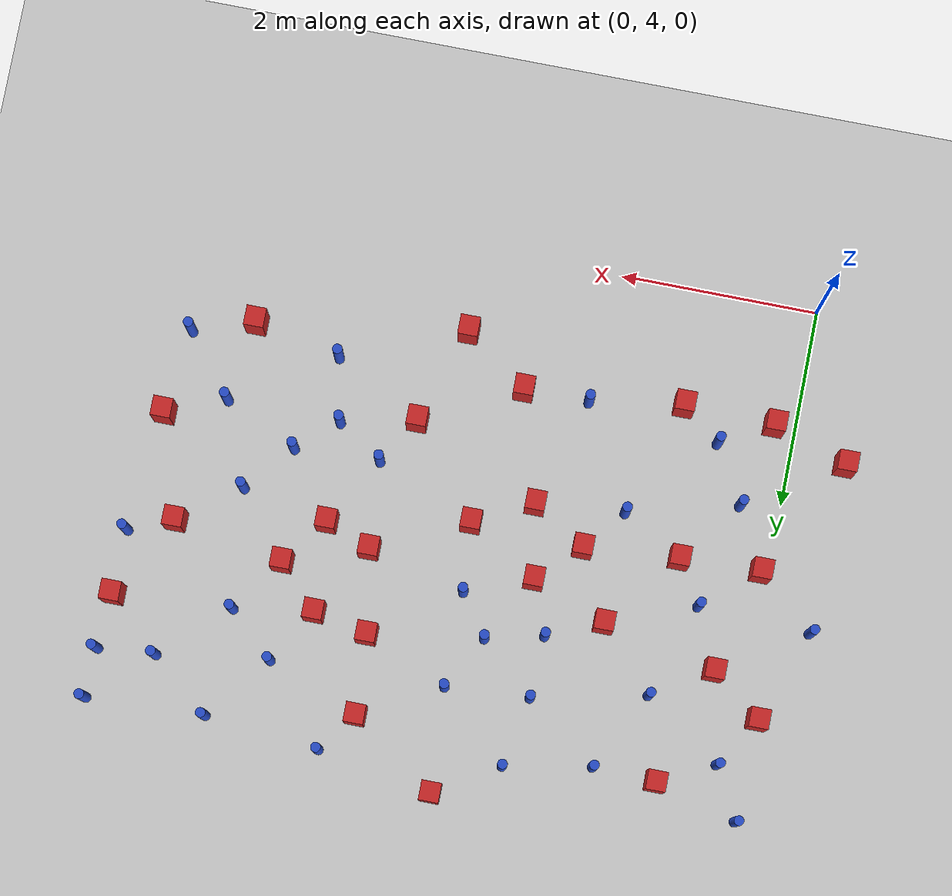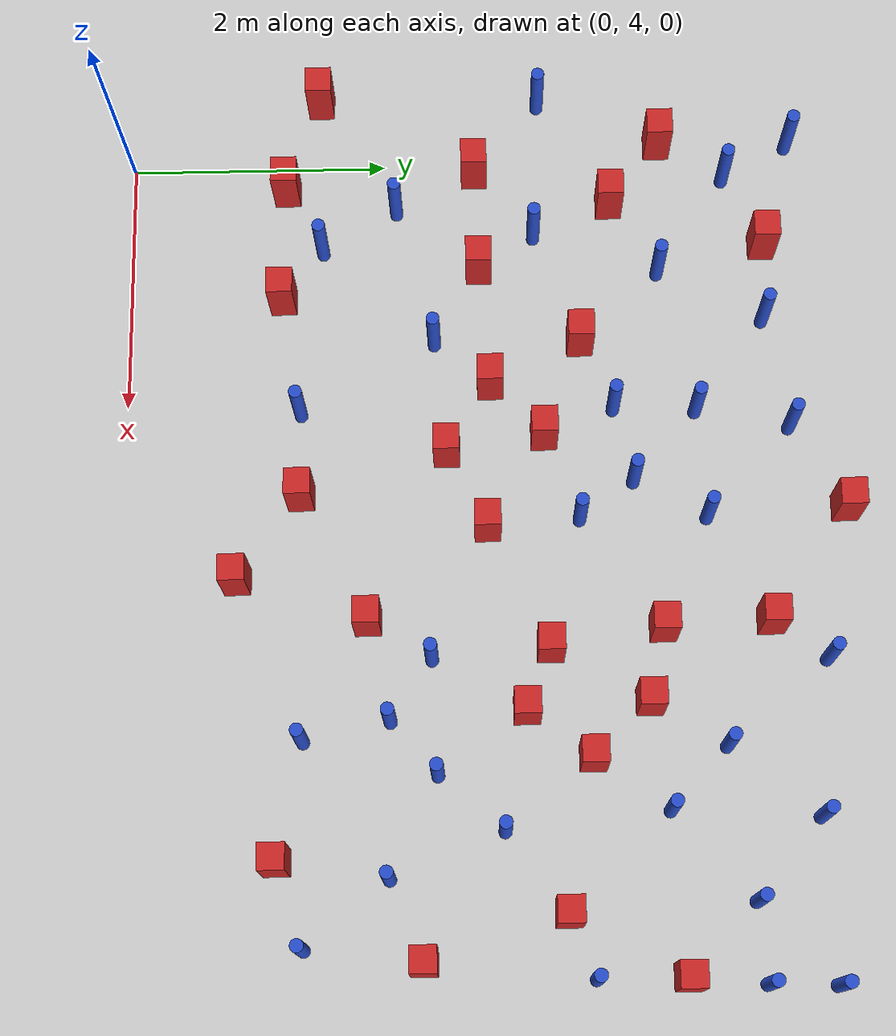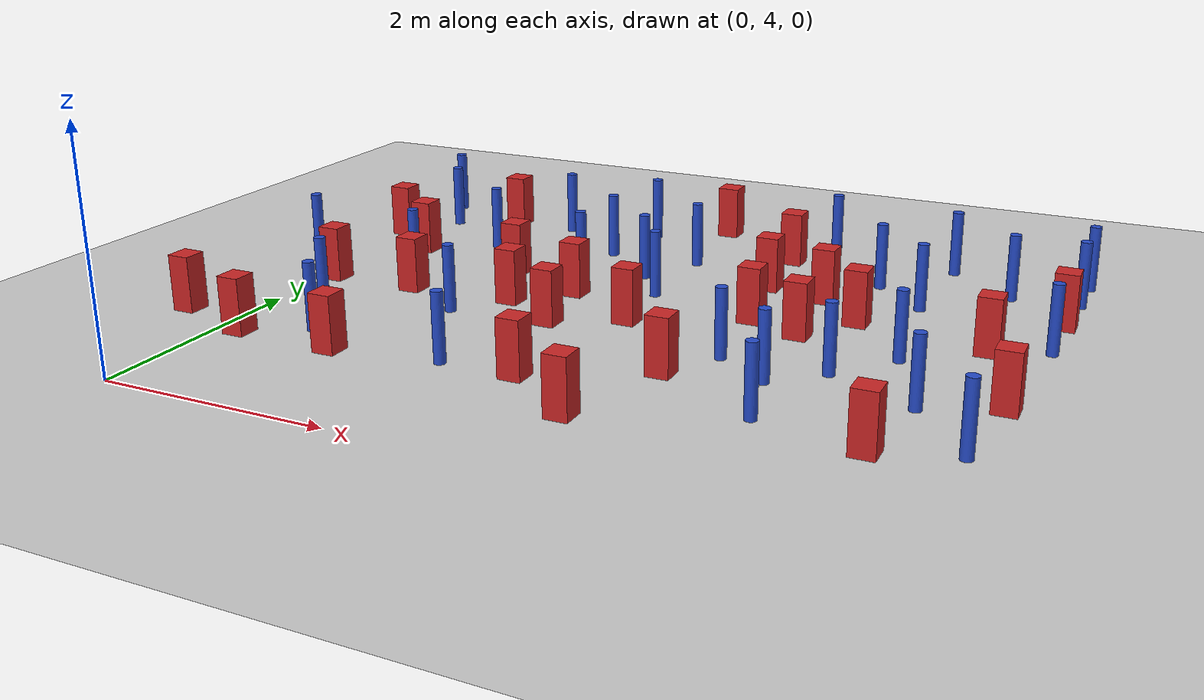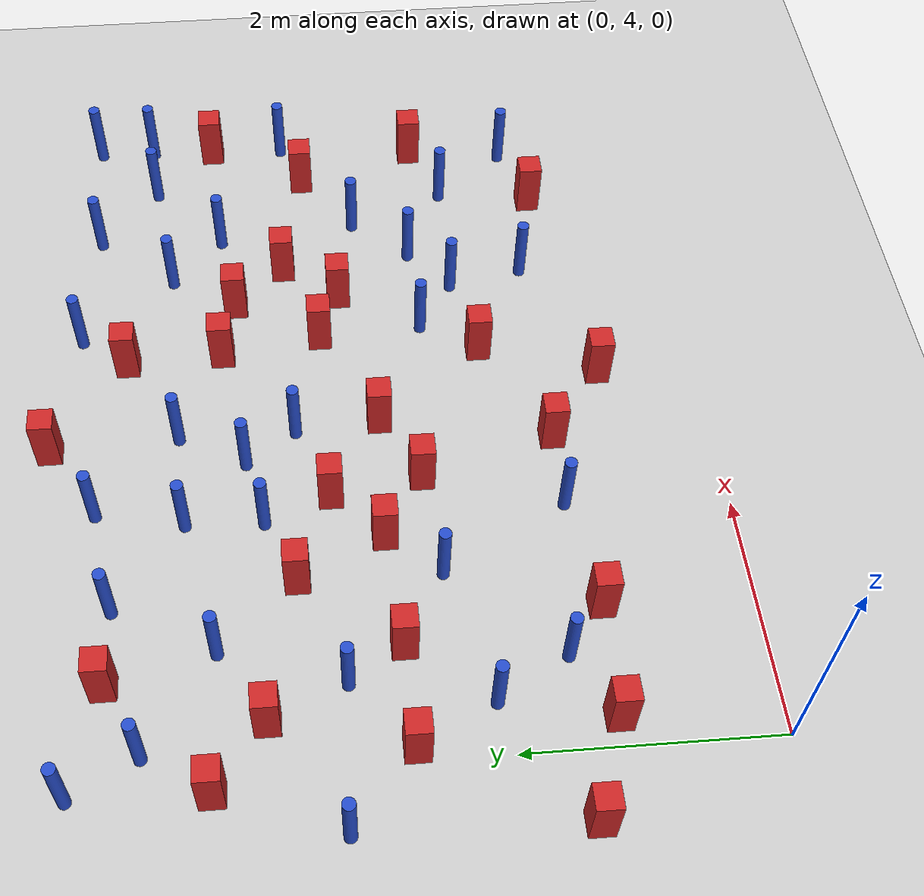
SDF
<sdf version="1.6">
 <world name="default">
  <model name="ground_plane">
   <static>1</static>
   <link name="link">
    <collision name="collision">
     <geometry><plane><normal>0 0 1</normal><size>100 100</size></plane></geometry>
     <surface><friction><ode><mu>100</mu><mu2>50</mu2></ode></friction></surface>
    </collision>
    <visual name="visual">
     <cast_shadows>0</cast_shadows>
     <geometry><plane><normal>0 0 1</normal><size>100 100</size></plane></geometry>
     <material>
      <ambient>1.0 1.0 1.0 1.0</ambient>
      <diffuse>0.8 0.8 0.8 1.0</diffuse>
      <specular>0.01 0.01 0.01 1.000000</specular>
     </material>
    </visual>
   </link>
  </model>
  <model name="pole_obstacle0">
   <static>true</static>
   <pose>6.45447654039 8.71331853259 7.38925637345e-09 -8.471706928e-08 1.24976765081e-08 -1.74513093015e-07</pose>
   <link name="link">
    <pose>0 0 0.3 0 -0 0</pose>
    <inertial>
     <mass>1</mass>
     <inertia><ixx>0.145833</ixx><ixy>0</ixy><ixz>0</ixz><iyy>0.145833</iyy><iyz>0</iyz><izz>0.125</izz></inertia>
    </inertial>
    <collision name="collision">
     <geometry><cylinder><radius>0.05</radius><length>.6</length></cylinder></geometry>
    </collision>
    <visual name="visual">
     <geometry><cylinder><radius>0.05</radius><length>.6</length></cylinder></geometry>
     <material>
      <script><name>Gazebo/Blue</name><uri>file://media/materials/scripts/gazebo.material</uri></script>
     </material>
    </visual>
   </link>
  </model>
  <model name="pole_obstacle12">
   <static>true</static>
   <pose>4.09159602282 9.2911421733 7.38925637345e-09 -8.471706928e-08 1.24976765081e-08 -1.74513093015e-07</pose>
   <link name="link">
    <pose>0 0 0.3 0 -0 0</pose>
    <inertial>
     <mass>1</mass>
     <inertia><ixx>0.145833</ixx><ixy>0</ixy><ixz>0</ixz><iyy>0.145833</iyy><iyz>0</iyz><izz>0.125</izz></inertia>
    </inertial>
    <collision name="collision">
     <geometry><cylinder><radius>0.05</radius><length>.6</length></cylinder></geometry>
    </collision>
    <visual name="visual">
     <geometry><cylinder><radius>0.05</radius><length>.6</length></cylinder></geometry>
     <material>
      <script><name>Gazebo/Blue</name><uri>file://media/materials/scripts/gazebo.material</uri></script>
     </material>
    </visual>
   </link>
  </model>
  <model name="square_post_obstacle10">
   <static>true</static>
   <pose>-0.545122452451 5.49682571022 1.91545236811e-07 -7.35059704564e-06 1.12565212e-07 2.39332434364e-05</pose>
   <link name="link">
    <pose>0 0 0.25 0 -0 0</pose>
    <inertial>
     <mass>100</mass>
     <inertia>
      <ixx>0.166667</ixx>
      <ixy>0</ixy>
      <ixz>0</ixz>
      <iyy>0.166667</iyy>
      <iyz>0</iyz>
      <izz>0.166667</izz>
     </inertia>
    </inertial>
    <collision name="collision"><geometry><box><size>.2 .2 .5</size></box></geometry></collision>
    <visual name="visual">
     <geometry><box><size>.2 .2 .5</size></box></geometry>
     <material>
      <script><name>Gazebo/Red</name><uri>file://media/materials/scripts/gazebo.material</uri></script>
     </material>
    </visual>
   </link>
  </model>
  <model name="square_post_obstacle12">
   <static>true</static>
   <pose>3.74705745859 5.85950981759 1.91545236811e-07 -7.35059704564e-06 1.12565212e-07 2.39332434364e-05</pose>
   <link name="link">
    <pose>0 0 0.25 0 -0 0</pose>
    <inertial>
     <mass>100</mass>
     <inertia>
      <ixx>0.166667</ixx>
      <ixy>0</ixy>
      <ixz>0</ixz>
      <iyy>0.166667</iyy>
      <iyz>0</iyz>
      <izz>0.166667</izz>
     </inertia>
    </inertial>
    <collision name="collision"><geometry><box><size>.2 .2 .5</size></box></geometry></collision>
    <visual name="visual">
     <geometry><box><size>.2 .2 .5</size></box></geometry>
     <material>
      <script><name>Gazebo/Red</name><uri>file://media/materials/scripts/gazebo.material</uri></script>
     </material>
    </visual>
   </link>
  </model>
  <model name="square_post_obstacle15">
   <static>true</static>
   <pose>1.88256273671 6.80930600151 1.91545236811e-07 -7.35059704564e-06 1.12565212e-07 2.39332434364e-05</pose>
   <link name="link">
    <pose>0 0 0.25 0 -0 0</pose>
    <inertial>
     <mass>100</mass>
     <inertia>
      <ixx>0.166667</ixx>
      <ixy>0</ixy>
      <ixz>0</ixz>
      <iyy>0.166667</iyy>
      <iyz>0</iyz>
      <izz>0.166667</izz>
     </inertia>
    </inertial>
    <collision name="collision"><geometry><box><size>.2 .2 .5</size></box></geometry></collision>
    <visual name="visual">
     <geometry><box><size>.2 .2 .5</size></box></geometry>
     <material>
      <script><name>Gazebo/Red</name><uri>file://media/materials/scripts/gazebo.material</uri></script>
     </material>
    </visual>
   </link>
  </model>
  <model name="square_post_obstacle16">
   <static>true</static>
   <pose>6.39530933987 8.14642815846 1.91545236811e-07 -7.35059704564e-06 1.12565212e-07 2.39332434364e-05</pose>
   <link name="link">
    <pose>0 0 0.25 0 -0 0</pose>
    <inertial>
     <mass>100</mass>
     <inertia>
      <ixx>0.166667</ixx>
      <ixy>0</ixy>
      <ixz>0</ixz>
      <iyy>0.166667</iyy>
      <iyz>0</iyz>
      <izz>0.166667</izz>
     </inertia>
    </inertial>
    <collision name="collision"><geometry><box><size>.2 .2 .5</size></box></geometry></collision>
    <visual name="visual">
     <geometry><box><size>.2 .2 .5</size></box></geometry>
     <material>
      <script><name>Gazebo/Red</name><uri>file://media/materials/scripts/gazebo.material</uri></script>
     </material>
    </visual>
   </link>
  </model>
  <model name="square_post_obstacle17">
   <static>true</static>
   <pose>4.44098144034 7.03544417988 1.91545236811e-07 -7.35059704564e-06 1.12565212e-07 2.39332434364e-05</pose>
   <link name="link">
    <pose>0 0 0.25 0 -0 0</pose>
    <inertial>
     <mass>100</mass>
     <inertia>
      <ixx>0.166667</ixx>
      <ixy>0</ixy>
      <ixz>0</ixz>
      <iyy>0.166667</iyy>
      <iyz>0</iyz>
      <izz>0.166667</izz>
     </inertia>
    </inertial>
    <collision name="collision"><geometry><box><size>.2 .2 .5</size></box></geometry></collision>
    <visual name="visual">
     <geometry><box><size>.2 .2 .5</size></box></geometry>
     <material>
      <script><name>Gazebo/Red</name><uri>file://media/materials/scripts/gazebo.material</uri></script>
     </material>
    </visual>
   </link>
  </model>
  <model name="pole_obstacle21">
   <static>true</static>
   <pose>5.26631035302 9.1702589592 7.38925637345e-09 -8.471706928e-08 1.24976765081e-08 -1.74513093015e-07</pose>
   <link name="link">
    <pose>0 0 0.3 0 -0 0</pose>
    <inertial>
     <mass>1</mass>
     <inertia><ixx>0.145833</ixx><ixy>0</ixy><ixz>0</ixz><iyy>0.145833</iyy><iyz>0</iyz><izz>0.125</izz></inertia>
    </inertial>
    <collision name="collision">
     <geometry><cylinder><radius>0.05</radius><length>.6</length></cylinder></geometry>
    </collision>
    <visual name="visual">
     <geometry><cylinder><radius>0.05</radius><length>.6</length></cylinder></geometry>
     <material>
      <script><name>Gazebo/Blue</name><uri>file://media/materials/scripts/gazebo.material</uri></script>
     </material>
    </visual>
   </link>
  </model>
  <model name="square_post_obstacle30">
   <static>true</static>
   <pose>3.83258501408 8.07017378821 1.91545236811e-07 -7.35059704564e-06 1.12565212e-07 2.39332434364e-05</pose>
   <link name="link">
    <pose>0 0 0.25 0 -0 0</pose>
    <inertial>
     <mass>100</mass>
     <inertia>
      <ixx>0.166667</ixx>
      <ixy>0</ixy>
      <ixz>0</ixz>
      <iyy>0.166667</iyy>
      <iyz>0</iyz>
      <izz>0.166667</izz>
     </inertia>
    </inertial>
    <collision name="collision"><geometry><box><size>.2 .2 .5</size></box></geometry></collision>
    <visual name="visual">
     <geometry><box><size>.2 .2 .5</size></box></geometry>
     <material>
      <script><name>Gazebo/Red</name><uri>file://media/materials/scripts/gazebo.material</uri></script>
     </material>
    </visual>
   </link>
  </model>
  <model name="square_post_obstacle37">
   <static>true</static>
   <pose>1.14866573883 5.20477821378 1.91545236811e-07 -7.35059704564e-06 1.12565212e-07 2.39332434364e-05</pose>
   <link name="link">
    <pose>0 0 0.25 0 -0 0</pose>
    <inertial>
     <mass>100</mass>
     <inertia>
      <ixx>0.166667</ixx>
      <ixy>0</ixy>
      <ixz>0</ixz>
      <iyy>0.166667</iyy>
      <iyz>0</iyz>
      <izz>0.166667</izz>
     </inertia>
    </inertial>
    <collision name="collision"><geometry><box><size>.2 .2 .5</size></box></geometry></collision>
    <visual name="visual">
     <geometry><box><size>.2 .2 .5</size></box></geometry>
     <material>
      <script><name>Gazebo/Red</name><uri>file://media/materials/scripts/gazebo.material</uri></script>
     </material>
    </visual>
   </link>
  </model>
  <model name="pole_obstacle56">
   <static>true</static>
   <pose>-0.504290990763 7.22764131729 7.38925637345e-09 -8.471706928e-08 1.24976765117e-08 -1.74513093013e-07</pose>
   <link name="link">
    <pose>0 0 0.3 0 -0 0</pose>
    <inertial>
     <mass>1</mass>
     <inertia><ixx>0.145833</ixx><ixy>0</ixy><ixz>0</ixz><iyy>0.145833</iyy><iyz>0</iyz><izz>0.125</izz></inertia>
    </inertial>
    <collision name="collision">
     <geometry><cylinder><radius>0.05</radius><length>.6</length></cylinder></geometry>
    </collision>
    <visual name="visual">
     <geometry><cylinder><radius>0.05</radius><length>.6</length></cylinder></geometry>
     <material>
      <script><name>Gazebo/Blue</name><uri>file://media/materials/scripts/gazebo.material</uri></script>
     </material>
    </visual>
   </link>
  </model>
  <model name="pole_obstacle58">
   <static>true</static>
   <pose>2.67838793935 7.8905832889 7.38925637345e-09 -8.47170692798e-08 1.24976765033e-08 -1.74513093019e-07</pose>
   <link name="link">
    <pose>0 0 0.3 0 -0 0</pose>
    <inertial>
     <mass>1</mass>
     <inertia><ixx>0.145833</ixx><ixy>0</ixy><ixz>0</ixz><iyy>0.145833</iyy><iyz>0</iyz><izz>0.125</izz></inertia>
    </inertial>
    <collision name="collision">
     <geometry><cylinder><radius>0.05</radius><length>.6</length></cylinder></geometry>
    </collision>
    <visual name="visual">
     <geometry><cylinder><radius>0.05</radius><length>.6</length></cylinder></geometry>
     <material>
      <script><name>Gazebo/Blue</name><uri>file://media/materials/scripts/gazebo.material</uri></script>
     </material>
    </visual>
   </link>
  </model>
  <model name="pole_obstacle66">
   <static>true</static>
   <pose>0.640411259399 7.17117177708 7.38925637345e-09 -8.471706928e-08 1.24976765086e-08 -1.74513093015e-07</pose>
   <link name="link">
    <pose>0 0 0.3 0 -0 0</pose>
    <inertial>
     <mass>1</mass>
     <inertia><ixx>0.145833</ixx><ixy>0</ixy><ixz>0</ixz><iyy>0.145833</iyy><iyz>0</iyz><izz>0.125</izz></inertia>
    </inertial>
    <collision name="collision">
     <geometry><cylinder><radius>0.05</radius><length>.6</length></cylinder></geometry>
    </collision>
    <visual name="visual">
     <geometry><cylinder><radius>0.05</radius><length>.6</length></cylinder></geometry>
     <material>
      <script><name>Gazebo/Blue</name><uri>file://media/materials/scripts/gazebo.material</uri></script>
     </material>
    </visual>
   </link>
  </model>
  <model name="pole_obstacle72">
   <static>true</static>
   <pose>0.173429523786 8.69050600248 7.38925637345e-09 -8.47170692796e-08 1.2497676475e-08 -1.74513093035e-07</pose>
   <link name="link">
    <pose>0 0 0.3 0 -0 0</pose>
    <inertial>
     <mass>1</mass>
     <inertia><ixx>0.145833</ixx><ixy>0</ixy><ixz>0</ixz><iyy>0.145833</iyy><iyz>0</iyz><izz>0.125</izz></inertia>
    </inertial>
    <collision name="collision">
     <geometry><cylinder><radius>0.05</radius><length>.6</length></cylinder></geometry>
    </collision>
    <visual name="visual">
     <geometry><cylinder><radius>0.05</radius><length>.6</length></cylinder></geometry>
     <material>
      <script><name>Gazebo/Blue</name><uri>file://media/materials/scripts/gazebo.material</uri></script>
     </material>
    </visual>
   </link>
  </model>
  <model name="square_post_obstacle63">
   <static>true</static>
   <pose>1.53615987998 7.51273771347 1.91545236811e-07 -7.35059704564e-06 1.12565212e-07 2.39332434364e-05</pose>
   <link name="link">
    <pose>0 0 0.25 0 -0 0</pose>
    <inertial>
     <mass>100</mass>
     <inertia>
      <ixx>0.166667</ixx>
      <ixy>0</ixy>
      <ixz>0</ixz>
      <iyy>0.166667</iyy>
      <iyz>0</iyz>
      <izz>0.166667</izz>
     </inertia>
    </inertial>
    <collision name="collision"><geometry><box><size>.2 .2 .5</size></box></geometry></collision>
    <visual name="visual">
     <geometry><box><size>.2 .2 .5</size></box></geometry>
     <material>
      <script><name>Gazebo/Red</name><uri>file://media/materials/scripts/gazebo.material</uri></script>
     </material>
    </visual>
   </link>
  </model>
  <model name="square_post_obstacle76">
   <static>true</static>
   <pose>0.0927801151584 6.71166293264 1.91545236811e-07 -7.35059704564e-06 1.12565212e-07 2.39332434364e-05</pose>
   <link name="link">
    <pose>0 0 0.25 0 -0 0</pose>
    <inertial>
     <mass>100</mass>
     <inertia>
      <ixx>0.166667</ixx>
      <ixy>0</ixy>
      <ixz>0</ixz>
      <iyy>0.166667</iyy>
      <iyz>0</iyz>
      <izz>0.166667</izz>
     </inertia>
    </inertial>
    <collision name="collision"><geometry><box><size>.2 .2 .5</size></box></geometry></collision>
    <visual name="visual">
     <geometry><box><size>.2 .2 .5</size></box></geometry>
     <material>
      <script><name>Gazebo/Red</name><uri>file://media/materials/scripts/gazebo.material</uri></script>
     </material>
    </visual>
   </link>
  </model>
  <model name="square_post_obstacle78">
   <static>true</static>
   <pose>0.373668749294 7.776331562 1.91545236811e-07 -7.35059704564e-06 1.12565212e-07 2.39332434364e-05</pose>
   <link name="link">
    <pose>0 0 0.25 0 -0 0</pose>
    <inertial>
     <mass>100</mass>
     <inertia>
      <ixx>0.166667</ixx>
      <ixy>0</ixy>
      <ixz>0</ixz>
      <iyy>0.166667</iyy>
      <iyz>0</iyz>
      <izz>0.166667</izz>
     </inertia>
    </inertial>
    <collision name="collision"><geometry><box><size>.2 .2 .5</size></box></geometry></collision>
    <visual name="visual">
     <geometry><box><size>.2 .2 .5</size></box></geometry>
     <material>
      <script><name>Gazebo/Red</name><uri>file://media/materials/scripts/gazebo.material</uri></script>
     </material>
    </visual>
   </link>
  </model>
  <model name="pole_obstacle90">
   <static>true</static>
   <pose>1.52917028168 6.38101492161 7.38925637345e-09 -8.47170692799e-08 1.24976765033e-08 -1.74513093018e-07</pose>
   <link name="link">
    <pose>0 0 0.3 0 -0 0</pose>
    <inertial>
     <mass>1</mass>
     <inertia><ixx>0.145833</ixx><ixy>0</ixy><ixz>0</ixz><iyy>0.145833</iyy><iyz>0</iyz><izz>0.125</izz></inertia>
    </inertial>
    <collision name="collision">
     <geometry><cylinder><radius>0.05</radius><length>.6</length></cylinder></geometry>
    </collision>
    <visual name="visual">
     <geometry><cylinder><radius>0.05</radius><length>.6</length></cylinder></geometry>
     <material>
      <script><name>Gazebo/Blue</name><uri>file://media/materials/scripts/gazebo.material</uri></script>
     </material>
    </visual>
   </link>
  </model>
  <model name="pole_obstacle91">
   <static>true</static>
   <pose>2.09401292833 5.34486153771 7.38925637345e-09 -8.47170692798e-08 1.24976765033e-08 -1.74513093019e-07</pose>
   <link name="link">
    <pose>0 0 0.3 0 -0 0</pose>
    <inertial>
     <mass>1</mass>
     <inertia><ixx>0.145833</ixx><ixy>0</ixy><ixz>0</ixz><iyy>0.145833</iyy><iyz>0</iyz><izz>0.125</izz></inertia>
    </inertial>
    <collision name="collision">
     <geometry><cylinder><radius>0.05</radius><length>.6</length></cylinder></geometry>
    </collision>
    <visual name="visual">
     <geometry><cylinder><radius>0.05</radius><length>.6</length></cylinder></geometry>
     <material>
      <script><name>Gazebo/Blue</name><uri>file://media/materials/scripts/gazebo.material</uri></script>
     </material>
    </visual>
   </link>
  </model>
  <model name="pole_obstacle92">
   <static>true</static>
   <pose>2.97230451236 7.47218144167 7.38925637345e-09 -8.47170692798e-08 1.24976765033e-08 -1.74513093019e-07</pose>
   <link name="link">
    <pose>0 0 0.3 0 -0 0</pose>
    <inertial>
     <mass>1</mass>
     <inertia><ixx>0.145833</ixx><ixy>0</ixy><ixz>0</ixz><iyy>0.145833</iyy><iyz>0</iyz><izz>0.125</izz></inertia>
    </inertial>
    <collision name="collision">
     <geometry><cylinder><radius>0.05</radius><length>.6</length></cylinder></geometry>
    </collision>
    <visual name="visual">
     <geometry><cylinder><radius>0.05</radius><length>.6</length></cylinder></geometry>
     <material>
      <script><name>Gazebo/Blue</name><uri>file://media/materials/scripts/gazebo.material</uri></script>
     </material>
    </visual>
   </link>
  </model>
  <model name="pole_obstacle95">
   <static>true</static>
   <pose>5.33167928406 6.85743216982 7.38925637345e-09 -8.47170692796e-08 1.24976764786e-08 -1.74513093032e-07</pose>
   <link name="link">
    <pose>0 0 0.3 0 -0 0</pose>
    <inertial>
     <mass>1</mass>
     <inertia><ixx>0.145833</ixx><ixy>0</ixy><ixz>0</ixz><iyy>0.145833</iyy><iyz>0</iyz><izz>0.125</izz></inertia>
    </inertial>
    <collision name="collision">
     <geometry><cylinder><radius>0.05</radius><length>.6</length></cylinder></geometry>
    </collision>
    <visual name="visual">
     <geometry><cylinder><radius>0.05</radius><length>.6</length></cylinder></geometry>
     <material>
      <script><name>Gazebo/Blue</name><uri>file://media/materials/scripts/gazebo.material</uri></script>
     </material>
    </visual>
   </link>
  </model>
  <model name="square_post_obstacle89">
   <static>true</static>
   <pose>0.744844221076 8.97318051248 1.91545236811e-07 -7.35059704564e-06 1.12565212e-07 2.39332434364e-05</pose>
   <link name="link">
    <pose>0 0 0.25 0 -0 0</pose>
    <inertial>
     <mass>100</mass>
     <inertia>
      <ixx>0.166667</ixx>
      <ixy>0</ixy>
      <ixz>0</ixz>
      <iyy>0.166667</iyy>
      <iyz>0</iyz>
      <izz>0.166667</izz>
     </inertia>
    </inertial>
    <collision name="collision"><geometry><box><size>.2 .2 .5</size></box></geometry></collision>
    <visual name="visual">
     <geometry><box><size>.2 .2 .5</size></box></geometry>
     <material>
      <script><name>Gazebo/Red</name><uri>file://media/materials/scripts/gazebo.material</uri></script>
     </material>
    </visual>
   </link>
  </model>
  <model name="square_post_obstacle95">
   <static>true</static>
   <pose>-0.137517161224 8.17719361656 1.91545236811e-07 -7.35059704564e-06 1.12565212e-07 2.39332434364e-05</pose>
   <link name="link">
    <pose>0 0 0.25 0 -0 0</pose>
    <inertial>
     <mass>100</mass>
     <inertia>
      <ixx>0.166667</ixx>
      <ixy>0</ixy>
      <ixz>0</ixz>
      <iyy>0.166667</iyy>
      <iyz>0</iyz>
      <izz>0.166667</izz>
     </inertia>
    </inertial>
    <collision name="collision"><geometry><box><size>.2 .2 .5</size></box></geometry></collision>
    <visual name="visual">
     <geometry><box><size>.2 .2 .5</size></box></geometry>
     <material>
      <script><name>Gazebo/Red</name><uri>file://media/materials/scripts/gazebo.material</uri></script>
     </material>
    </visual>
   </link>
  </model>
  <model name="square_post_obstacle100">
   <static>true</static>
   <pose>2.30271309138 7.2138376437 1.91545236811e-07 -7.35059704564e-06 1.12565212e-07 2.39332434364e-05</pose>
   <link name="link">
    <pose>0 0 0.25 0 -0 0</pose>
    <inertial>
     <mass>100</mass>
     <inertia>
      <ixx>0.166667</ixx>
      <ixy>0</ixy>
      <ixz>0</ixz>
      <iyy>0.166667</iyy>
      <iyz>0</iyz>
      <izz>0.166667</izz>
     </inertia>
    </inertial>
    <collision name="collision"><geometry><box><size>.2 .2 .5</size></box></geometry></collision>
    <visual name="visual">
     <geometry><box><size>.2 .2 .5</size></box></geometry>
     <material>
      <script><name>Gazebo/Red</name><uri>file://media/materials/scripts/gazebo.material</uri></script>
     </material>
    </visual>
   </link>
  </model>
  <model name="pole_obstacle106">
   <static>true</static>
   <pose>0.964677962123 8.13944833201 7.38925637345e-09 -8.47170692796e-08 1.24976764734e-08 -1.74513093035e-07</pose>
   <link name="link">
    <pose>0 0 0.3 0 -0 0</pose>
    <inertial>
     <mass>1</mass>
     <inertia><ixx>0.145833</ixx><ixy>0</ixy><ixz>0</ixz><iyy>0.145833</iyy><iyz>0</iyz><izz>0.125</izz></inertia>
    </inertial>
    <collision name="collision">
     <geometry><cylinder><radius>0.05</radius><length>.6</length></cylinder></geometry>
    </collision>
    <visual name="visual">
     <geometry><cylinder><radius>0.05</radius><length>.6</length></cylinder></geometry>
     <material>
      <script><name>Gazebo/Blue</name><uri>file://media/materials/scripts/gazebo.material</uri></script>
     </material>
    </visual>
   </link>
  </model>
  <model name="square_post_obstacle103">
   <static>true</static>
   <pose>5.93173742704 7.30629015142 1.91545236811e-07 -7.35059704564e-06 1.12565212e-07 2.39332434364e-05</pose>
   <link name="link">
    <pose>0 0 0.25 0 -0 0</pose>
    <inertial>
     <mass>100</mass>
     <inertia>
      <ixx>0.166667</ixx>
      <ixy>0</ixy>
      <ixz>0</ixz>
      <iyy>0.166667</iyy>
      <iyz>0</iyz>
      <izz>0.166667</izz>
     </inertia>
    </inertial>
    <collision name="collision"><geometry><box><size>.2 .2 .5</size></box></geometry></collision>
    <visual name="visual">
     <geometry><box><size>.2 .2 .5</size></box></geometry>
     <material>
      <script><name>Gazebo/Red</name><uri>file://media/materials/scripts/gazebo.material</uri></script>
     </material>
    </visual>
   </link>
  </model>
  <model name="square_post_obstacle110">
   <static>true</static>
   <pose>2.75830531948 5.35155786229 1.91545236811e-07 -7.35059704564e-06 1.12565212e-07 2.39332434364e-05</pose>
   <link name="link">
    <pose>0 0 0.25 0 -0 0</pose>
    <inertial>
     <mass>100</mass>
     <inertia>
      <ixx>0.166667</ixx>
      <ixy>0</ixy>
      <ixz>0</ixz>
      <iyy>0.166667</iyy>
      <iyz>0</iyz>
      <izz>0.166667</izz>
     </inertia>
    </inertial>
    <collision name="collision"><geometry><box><size>.2 .2 .5</size></box></geometry></collision>
    <visual name="visual">
     <geometry><box><size>.2 .2 .5</size></box></geometry>
     <material>
      <script><name>Gazebo/Red</name><uri>file://media/materials/scripts/gazebo.material</uri></script>
     </material>
    </visual>
   </link>
  </model>
  <model name="pole_obstacle113">
   <static>true</static>
   <pose>1.379358159 8.94537067735 7.38925637345e-09 -8.47170692798e-08 1.24976764881e-08 -1.74513093027e-07</pose>
   <link name="link">
    <pose>0 0 0.3 0 -0 0</pose>
    <inertial>
     <mass>1</mass>
     <inertia><ixx>0.145833</ixx><ixy>0</ixy><ixz>0</ixz><iyy>0.145833</iyy><iyz>0</iyz><izz>0.125</izz></inertia>
    </inertial>
    <collision name="collision">
     <geometry><cylinder><radius>0.05</radius><length>.6</length></cylinder></geometry>
    </collision>
    <visual name="visual">
     <geometry><cylinder><radius>0.05</radius><length>.6</length></cylinder></geometry>
     <material>
      <script><name>Gazebo/Blue</name><uri>file://media/materials/scripts/gazebo.material</uri></script>
     </material>
    </visual>
   </link>
  </model>
  <model name="pole_obstacle115">
   <static>true</static>
   <pose>4.73510388301 8.50815964453 7.38925637345e-09 -8.471706928e-08 1.24976765081e-08 -1.74513093015e-07</pose>
   <link name="link">
    <pose>0 0 0.3 0 -0 0</pose>
    <inertial>
     <mass>1</mass>
     <inertia><ixx>0.145833</ixx><ixy>0</ixy><ixz>0</ixz><iyy>0.145833</iyy><iyz>0</iyz><izz>0.125</izz></inertia>
    </inertial>
    <collision name="collision">
     <geometry><cylinder><radius>0.05</radius><length>.6</length></cylinder></geometry>
    </collision>
    <visual name="visual">
     <geometry><cylinder><radius>0.05</radius><length>.6</length></cylinder></geometry>
     <material>
      <script><name>Gazebo/Blue</name><uri>file://media/materials/scripts/gazebo.material</uri></script>
     </material>
    </visual>
   </link>
  </model>
  <model name="square_post_obstacle112">
   <static>true</static>
   <pose>6.25944131388 6.25667901129 1.91545236811e-07 -7.35059704564e-06 1.12565212e-07 2.39332434364e-05</pose>
   <link name="link">
    <pose>0 0 0.25 0 -0 0</pose>
    <inertial>
     <mass>100</mass>
     <inertia>
      <ixx>0.166667</ixx>
      <ixy>0</ixy>
      <ixz>0</ixz>
      <iyy>0.166667</iyy>
      <iyz>0</iyz>
      <izz>0.166667</izz>
     </inertia>
    </inertial>
    <collision name="collision"><geometry><box><size>.2 .2 .5</size></box></geometry></collision>
    <visual name="visual">
     <geometry><box><size>.2 .2 .5</size></box></geometry>
     <material>
      <script><name>Gazebo/Red</name><uri>file://media/materials/scripts/gazebo.material</uri></script>
     </material>
    </visual>
   </link>
  </model>
  <model name="pole_obstacle119">
   <static>true</static>
   <pose>4.04341013082 6.33520967192 7.38925637345e-09 -8.47170692796e-08 1.24976764793e-08 -1.74513093032e-07</pose>
   <link name="link">
    <pose>0 0 0.3 0 -0 0</pose>
    <inertial>
     <mass>1</mass>
     <inertia><ixx>0.145833</ixx><ixy>0</ixy><ixz>0</ixz><iyy>0.145833</iyy><iyz>0</iyz><izz>0.125</izz></inertia>
    </inertial>
    <collision name="collision">
     <geometry><cylinder><radius>0.05</radius><length>.6</length></cylinder></geometry>
    </collision>
    <visual name="visual">
     <geometry><cylinder><radius>0.05</radius><length>.6</length></cylinder></geometry>
     <material>
      <script><name>Gazebo/Blue</name><uri>file://media/materials/scripts/gazebo.material</uri></script>
     </material>
    </visual>
   </link>
  </model>
  <model name="pole_obstacle121">
   <static>true</static>
   <pose>5.66531852088 6.01052796393 7.38925637345e-09 -8.47170692796e-08 1.24976764786e-08 -1.74513093032e-07</pose>
   <link name="link">
    <pose>0 0 0.3 0 -0 0</pose>
    <inertial>
     <mass>1</mass>
     <inertia><ixx>0.145833</ixx><ixy>0</ixy><ixz>0</ixz><iyy>0.145833</iyy><iyz>0</iyz><izz>0.125</izz></inertia>
    </inertial>
    <collision name="collision">
     <geometry><cylinder><radius>0.05</radius><length>.6</length></cylinder></geometry>
    </collision>
    <visual name="visual">
     <geometry><cylinder><radius>0.05</radius><length>.6</length></cylinder></geometry>
     <material>
      <script><name>Gazebo/Blue</name><uri>file://media/materials/scripts/gazebo.material</uri></script>
     </material>
    </visual>
   </link>
  </model>
  <model name="pole_obstacle126">
   <static>true</static>
   <pose>0.411483870109 6.09299620234 7.38925637345e-09 -8.471706928e-08 1.24976765079e-08 -1.74513093015e-07</pose>
   <link name="link">
    <pose>0 0 0.3 0 -0 0</pose>
    <inertial>
     <mass>1</mass>
     <inertia><ixx>0.145833</ixx><ixy>0</ixy><ixz>0</ixz><iyy>0.145833</iyy><iyz>0</iyz><izz>0.125</izz></inertia>
    </inertial>
    <collision name="collision">
     <geometry><cylinder><radius>0.05</radius><length>.6</length></cylinder></geometry>
    </collision>
    <visual name="visual">
     <geometry><cylinder><radius>0.05</radius><length>.6</length></cylinder></geometry>
     <material>
      <script><name>Gazebo/Blue</name><uri>file://media/materials/scripts/gazebo.material</uri></script>
     </material>
    </visual>
   </link>
  </model>
  <model name="square_post_obstacle124">
   <static>true</static>
   <pose>3.02655755236 6.77022255775 1.91545236811e-07 -7.35059704564e-06 1.12565212e-07 2.39332434364e-05</pose>
   <link name="link">
    <pose>0 0 0.25 0 -0 0</pose>
    <inertial>
     <mass>100</mass>
     <inertia>
      <ixx>0.166667</ixx>
      <ixy>0</ixy>
      <ixz>0</ixz>
      <iyy>0.166667</iyy>
      <iyz>0</iyz>
      <izz>0.166667</izz>
     </inertia>
    </inertial>
    <collision name="collision"><geometry><box><size>.2 .2 .5</size></box></geometry></collision>
    <visual name="visual">
     <geometry><box><size>.2 .2 .5</size></box></geometry>
     <material>
      <script><name>Gazebo/Red</name><uri>file://media/materials/scripts/gazebo.material</uri></script>
     </material>
    </visual>
   </link>
  </model>
  <model name="square_post_obstacle127">
   <static>true</static>
   <pose>3.78755181517 8.88391971758 1.91545236811e-07 -7.35059704564e-06 1.12565212e-07 2.39332434364e-05</pose>
   <link name="link">
    <pose>0 0 0.25 0 -0 0</pose>
    <inertial>
     <mass>100</mass>
     <inertia>
      <ixx>0.166667</ixx>
      <ixy>0</ixy>
      <ixz>0</ixz>
      <iyy>0.166667</iyy>
      <iyz>0</iyz>
      <izz>0.166667</izz>
     </inertia>
    </inertial>
    <collision name="collision"><geometry><box><size>.2 .2 .5</size></box></geometry></collision>
    <visual name="visual">
     <geometry><box><size>.2 .2 .5</size></box></geometry>
     <material>
      <script><name>Gazebo/Red</name><uri>file://media/materials/scripts/gazebo.material</uri></script>
     </material>
    </visual>
   </link>
  </model>
  <model name="square_post_obstacle133">
   <static>true</static>
   <pose>3.41253947796 4.87228864916 1.91545236811e-07 -7.35059704564e-06 1.12565212e-07 2.39332434364e-05</pose>
   <link name="link">
    <pose>0 0 0.25 0 -0 0</pose>
    <inertial>
     <mass>100</mass>
     <inertia>
      <ixx>0.166667</ixx>
      <ixy>0</ixy>
      <ixz>0</ixz>
      <iyy>0.166667</iyy>
      <iyz>0</iyz>
      <izz>0.166667</izz>
     </inertia>
    </inertial>
    <collision name="collision"><geometry><box><size>.2 .2 .5</size></box></geometry></collision>
    <visual name="visual">
     <geometry><box><size>.2 .2 .5</size></box></geometry>
     <material>
      <script><name>Gazebo/Red</name><uri>file://media/materials/scripts/gazebo.material</uri></script>
     </material>
    </visual>
   </link>
  </model>
  <model name="square_post_obstacle138">
   <static>true</static>
   <pose>0.221521625188 5.22940378726 1.91545236811e-07 -7.35059704564e-06 1.12565212e-07 2.39332434364e-05</pose>
   <link name="link">
    <pose>0 0 0.25 0 -0 0</pose>
    <inertial>
     <mass>100</mass>
     <inertia>
      <ixx>0.166667</ixx>
      <ixy>0</ixy>
      <ixz>0</ixz>
      <iyy>0.166667</iyy>
      <iyz>0</iyz>
      <izz>0.166667</izz>
     </inertia>
    </inertial>
    <collision name="collision"><geometry><box><size>.2 .2 .5</size></box></geometry></collision>
    <visual name="visual">
     <geometry><box><size>.2 .2 .5</size></box></geometry>
     <material>
      <script><name>Gazebo/Red</name><uri>file://media/materials/scripts/gazebo.material</uri></script>
     </material>
    </visual>
   </link>
  </model>
  <model name="square_post_obstacle139">
   <static>true</static>
   <pose>4.39076563859 7.94858100316 1.91545236811e-07 -7.35059704564e-06 1.12565212e-07 2.39332434364e-05</pose>
   <link name="link">
    <pose>0 0 0.25 0 -0 0</pose>
    <inertial>
     <mass>100</mass>
     <inertia>
      <ixx>0.166667</ixx>
      <ixy>0</ixy>
      <ixz>0</ixz>
      <iyy>0.166667</iyy>
      <iyz>0</iyz>
      <izz>0.166667</izz>
     </inertia>
    </inertial>
    <collision name="collision"><geometry><box><size>.2 .2 .5</size></box></geometry></collision>
    <visual name="visual">
     <geometry><box><size>.2 .2 .5</size></box></geometry>
     <material>
      <script><name>Gazebo/Red</name><uri>file://media/materials/scripts/gazebo.material</uri></script>
     </material>
    </visual>
   </link>
  </model>
  <model name="pole_obstacle147">
   <static>true</static>
   <pose>2.12012925198 8.38776427869 7.38925637345e-09 -8.47170692793e-08 1.24976764408e-08 -1.74513093041e-07</pose>
   <link name="link">
    <pose>0 0 0.3 0 -0 0</pose>
    <inertial>
     <mass>1</mass>
     <inertia><ixx>0.145833</ixx><ixy>0</ixy><ixz>0</ixz><iyy>0.145833</iyy><iyz>0</iyz><izz>0.125</izz></inertia>
    </inertial>
    <collision name="collision">
     <geometry><cylinder><radius>0.05</radius><length>.6</length></cylinder></geometry>
    </collision>
    <visual name="visual">
     <geometry><cylinder><radius>0.05</radius><length>.6</length></cylinder></geometry>
     <material>
      <script><name>Gazebo/Blue</name><uri>file://media/materials/scripts/gazebo.material</uri></script>
     </material>
    </visual>
   </link>
  </model>
  <model name="pole_obstacle160">
   <static>true</static>
   <pose>4.91325508364 6.37074374586 7.38925637345e-09 -8.47170692796e-08 1.24976764786e-08 -1.74513093032e-07</pose>
   <link name="link">
    <pose>0 0 0.3 0 -0 0</pose>
    <inertial>
     <mass>1</mass>
     <inertia><ixx>0.145833</ixx><ixy>0</ixy><ixz>0</ixz><iyy>0.145833</iyy><iyz>0</iyz><izz>0.125</izz></inertia>
    </inertial>
    <collision name="collision">
     <geometry><cylinder><radius>0.05</radius><length>.6</length></cylinder></geometry>
    </collision>
    <visual name="visual">
     <geometry><cylinder><radius>0.05</radius><length>.6</length></cylinder></geometry>
     <material>
      <script><name>Gazebo/Blue</name><uri>file://media/materials/scripts/gazebo.material</uri></script>
     </material>
    </visual>
   </link>
  </model>
  <model name="square_post_obstacle158">
   <static>true</static>
   <pose>2.42943344809 6.46743483589 1.91545236811e-07 -7.35059704564e-06 1.12565212e-07 2.39332434364e-05</pose>
   <link name="link">
    <pose>0 0 0.25 0 -0 0</pose>
    <inertial>
     <mass>100</mass>
     <inertia>
      <ixx>0.166667</ixx>
      <ixy>0</ixy>
      <ixz>0</ixz>
      <iyy>0.166667</iyy>
      <iyz>0</iyz>
      <izz>0.166667</izz>
     </inertia>
    </inertial>
    <collision name="collision"><geometry><box><size>.2 .2 .5</size></box></geometry></collision>
    <visual name="visual">
     <geometry><box><size>.2 .2 .5</size></box></geometry>
     <material>
      <script><name>Gazebo/Red</name><uri>file://media/materials/scripts/gazebo.material</uri></script>
     </material>
    </visual>
   </link>
  </model>
  <model name="pole_obstacle170">
   <static>true</static>
   <pose>4.5089978193 6.02216792372 7.38925637345e-09 -8.47170692796e-08 1.24976764786e-08 -1.74513093032e-07</pose>
   <link name="link">
    <pose>0 0 0.3 0 -0 0</pose>
    <inertial>
     <mass>1</mass>
     <inertia><ixx>0.145833</ixx><ixy>0</ixy><ixz>0</ixz><iyy>0.145833</iyy><iyz>0</iyz><izz>0.125</izz></inertia>
    </inertial>
    <collision name="collision">
     <geometry><cylinder><radius>0.05</radius><length>.6</length></cylinder></geometry>
    </collision>
    <visual name="visual">
     <geometry><cylinder><radius>0.05</radius><length>.6</length></cylinder></geometry>
     <material>
      <script><name>Gazebo/Blue</name><uri>file://media/materials/scripts/gazebo.material</uri></script>
     </material>
    </visual>
   </link>
  </model>
  <model name="pole_obstacle172">
   <static>true</static>
   <pose>4.64876427292 5.37289668389 7.38925637345e-09 -8.47170692796e-08 1.24976764786e-08 -1.74513093032e-07</pose>
   <link name="link">
    <pose>0 0 0.3 0 -0 0</pose>
    <inertial>
     <mass>1</mass>
     <inertia><ixx>0.145833</ixx><ixy>0</ixy><ixz>0</ixz><iyy>0.145833</iyy><iyz>0</iyz><izz>0.125</izz></inertia>
    </inertial>
    <collision name="collision">
     <geometry><cylinder><radius>0.05</radius><length>.6</length></cylinder></geometry>
    </collision>
    <visual name="visual">
     <geometry><cylinder><radius>0.05</radius><length>.6</length></cylinder></geometry>
     <material>
      <script><name>Gazebo/Blue</name><uri>file://media/materials/scripts/gazebo.material</uri></script>
     </material>
    </visual>
   </link>
  </model>
  <model name="pole_obstacle176">
   <static>true</static>
   <pose>5.20187309964 8.07165407701 7.38925637345e-09 -8.471706928e-08 1.24976765081e-08 -1.74513093015e-07</pose>
   <link name="link">
    <pose>0 0 0.3 0 -0 0</pose>
    <inertial>
     <mass>1</mass>
     <inertia><ixx>0.145833</ixx><ixy>0</ixy><ixz>0</ixz><iyy>0.145833</iyy><iyz>0</iyz><izz>0.125</izz></inertia>
    </inertial>
    <collision name="collision">
     <geometry><cylinder><radius>0.05</radius><length>.6</length></cylinder></geometry>
    </collision>
    <visual name="visual">
     <geometry><cylinder><radius>0.05</radius><length>.6</length></cylinder></geometry>
     <material>
      <script><name>Gazebo/Blue</name><uri>file://media/materials/scripts/gazebo.material</uri></script>
     </material>
    </visual>
   </link>
  </model>
  <model name="square_post_obstacle179">
   <static>true</static>
   <pose>5.52763052811 5.18787239867 1.91545236811e-07 -7.35059704564e-06 1.12565212e-07 2.39332434364e-05</pose>
   <link name="link">
    <pose>0 0 0.25 0 -0 0</pose>
    <inertial>
     <mass>100</mass>
     <inertia>
      <ixx>0.166667</ixx>
      <ixy>0</ixy>
      <ixz>0</ixz>
      <iyy>0.166667</iyy>
      <iyz>0</iyz>
      <izz>0.166667</izz>
     </inertia>
    </inertial>
    <collision name="collision"><geometry><box><size>.2 .2 .5</size></box></geometry></collision>
    <visual name="visual">
     <geometry><box><size>.2 .2 .5</size></box></geometry>
     <material>
      <script><name>Gazebo/Red</name><uri>file://media/materials/scripts/gazebo.material</uri></script>
     </material>
    </visual>
   </link>
  </model>
  <model name="pole_obstacle185">
   <static>true</static>
   <pose>-0.105836003474 9.21250348855 7.38925637345e-09 -8.47170692796e-08 1.24976764728e-08 -1.74513093036e-07</pose>
   <link name="link">
    <pose>0 0 0.3 0 -0 0</pose>
    <inertial>
     <mass>1</mass>
     <inertia><ixx>0.145833</ixx><ixy>0</ixy><ixz>0</ixz><iyy>0.145833</iyy><iyz>0</iyz><izz>0.125</izz></inertia>
    </inertial>
    <collision name="collision">
     <geometry><cylinder><radius>0.05</radius><length>.6</length></cylinder></geometry>
    </collision>
    <visual name="visual">
     <geometry><cylinder><radius>0.05</radius><length>.6</length></cylinder></geometry>
     <material>
      <script><name>Gazebo/Blue</name><uri>file://media/materials/scripts/gazebo.material</uri></script>
     </material>
    </visual>
   </link>
  </model>
  <model name="square_post_obstacle185">
   <static>true</static>
   <pose>4.80184566235 7.51460642698 1.91545236811e-07 -7.35059704564e-06 1.12565212e-07 2.39332434364e-05</pose>
   <link name="link">
    <pose>0 0 0.25 0 -0 0</pose>
    <inertial>
     <mass>100</mass>
     <inertia>
      <ixx>0.166667</ixx>
      <ixy>0</ixy>
      <ixz>0</ixz>
      <iyy>0.166667</iyy>
      <iyz>0</iyz>
      <izz>0.166667</izz>
     </inertia>
    </inertial>
    <collision name="collision"><geometry><box><size>.2 .2 .5</size></box></geometry></collision>
    <visual name="visual">
     <geometry><box><size>.2 .2 .5</size></box></geometry>
     <material>
      <script><name>Gazebo/Red</name><uri>file://media/materials/scripts/gazebo.material</uri></script>
     </material>
    </visual>
   </link>
  </model>
  <model name="square_post_obstacle195">
   <static>true</static>
   <pose>2.91243708928 9.49951885985 1.91545236811e-07 -7.35059704564e-06 1.12565212e-07 2.39332434364e-05</pose>
   <link name="link">
    <pose>0 0 0.25 0 -0 0</pose>
    <inertial>
     <mass>100</mass>
     <inertia>
      <ixx>0.166667</ixx>
      <ixy>0</ixy>
      <ixz>0</ixz>
      <iyy>0.166667</iyy>
      <iyz>0</iyz>
      <izz>0.166667</izz>
     </inertia>
    </inertial>
    <collision name="collision"><geometry><box><size>.2 .2 .5</size></box></geometry></collision>
    <visual name="visual">
     <geometry><box><size>.2 .2 .5</size></box></geometry>
     <material>
      <script><name>Gazebo/Red</name><uri>file://media/materials/scripts/gazebo.material</uri></script>
     </material>
    </visual>
   </link>
  </model>
  <model name="pole_obstacle190">
   <static>true</static>
   <pose>6.15837287259 5.38563481907 7.38925637345e-09 -8.47170692796e-08 1.24976764786e-08 -1.74513093032e-07</pose>
   <link name="link">
    <pose>0 0 0.3 0 -0 0</pose>
    <inertial>
     <mass>1</mass>
     <inertia><ixx>0.145833</ixx><ixy>0</ixy><ixz>0</ixz><iyy>0.145833</iyy><iyz>0</iyz><izz>0.125</izz></inertia>
    </inertial>
    <collision name="collision">
     <geometry><cylinder><radius>0.05</radius><length>.6</length></cylinder></geometry>
    </collision>
    <visual name="visual">
     <geometry><cylinder><radius>0.05</radius><length>.6</length></cylinder></geometry>
     <material>
      <script><name>Gazebo/Blue</name><uri>file://media/materials/scripts/gazebo.material</uri></script>
     </material>
    </visual>
   </link>
  </model>
  <model name="pole_obstacle199">
   <static>true</static>
   <pose>2.09071819181 7.75393918557 7.38925637345e-09 -8.47170692798e-08 1.24976765033e-08 -1.74513093019e-07</pose>
   <link name="link">
    <pose>0 0 0.3 0 -0 0</pose>
    <inertial>
     <mass>1</mass>
     <inertia><ixx>0.145833</ixx><ixy>0</ixy><ixz>0</ixz><iyy>0.145833</iyy><iyz>0</iyz><izz>0.125</izz></inertia>
    </inertial>
    <collision name="collision">
     <geometry><cylinder><radius>0.05</radius><length>.6</length></cylinder></geometry>
    </collision>
    <visual name="visual">
     <geometry><cylinder><radius>0.05</radius><length>.6</length></cylinder></geometry>
     <material>
      <script><name>Gazebo/Blue</name><uri>file://media/materials/scripts/gazebo.material</uri></script>
     </material>
    </visual>
   </link>
  </model>
  <model name="pole_obstacle201">
   <static>true</static>
   <pose>0.747193418488 5.51342752954 7.38925637345e-09 -8.471706928e-08 1.24976765086e-08 -1.74513093015e-07</pose>
   <link name="link">
    <pose>0 0 0.3 0 -0 0</pose>
    <inertial>
     <mass>1</mass>
     <inertia><ixx>0.145833</ixx><ixy>0</ixy><ixz>0</ixz><iyy>0.145833</iyy><iyz>0</iyz><izz>0.125</izz></inertia>
    </inertial>
    <collision name="collision">
     <geometry><cylinder><radius>0.05</radius><length>.6</length></cylinder></geometry>
    </collision>
    <visual name="visual">
     <geometry><cylinder><radius>0.05</radius><length>.6</length></cylinder></geometry>
     <material>
      <script><name>Gazebo/Blue</name><uri>file://media/materials/scripts/gazebo.material</uri></script>
     </material>
    </visual>
   </link>
  </model>
  <model name="pole_obstacle203">
   <static>true</static>
   <pose>2.97513089922 8.44098875833 7.38925637345e-09 -8.47170692793e-08 1.24976764408e-08 -1.74513093041e-07</pose>
   <link name="link">
    <pose>0 0 0.3 0 -0 0</pose>
    <inertial>
     <mass>1</mass>
     <inertia><ixx>0.145833</ixx><ixy>0</ixy><ixz>0</ixz><iyy>0.145833</iyy><iyz>0</iyz><izz>0.125</izz></inertia>
    </inertial>
    <collision name="collision">
     <geometry><cylinder><radius>0.05</radius><length>.6</length></cylinder></geometry>
    </collision>
    <visual name="visual">
     <geometry><cylinder><radius>0.05</radius><length>.6</length></cylinder></geometry>
     <material>
      <script><name>Gazebo/Blue</name><uri>file://media/materials/scripts/gazebo.material</uri></script>
     </material>
    </visual>
   </link>
  </model>
  <model name="pole_obstacle206">
   <static>true</static>
   <pose>6.39832136963 7.49153986949 7.38925637345e-09 -8.47170692796e-08 1.24976764786e-08 -1.74513093032e-07</pose>
   <link name="link">
    <pose>0 0 0.3 0 -0 0</pose>
    <inertial>
     <mass>1</mass>
     <inertia><ixx>0.145833</ixx><ixy>0</ixy><ixz>0</ixz><iyy>0.145833</iyy><iyz>0</iyz><izz>0.125</izz></inertia>
    </inertial>
    <collision name="collision">
     <geometry><cylinder><radius>0.05</radius><length>.6</length></cylinder></geometry>
    </collision>
    <visual name="visual">
     <geometry><cylinder><radius>0.05</radius><length>.6</length></cylinder></geometry>
     <material>
      <script><name>Gazebo/Blue</name><uri>file://media/materials/scripts/gazebo.material</uri></script>
     </material>
    </visual>
   </link>
  </model>
  <model name="pole_obstacle212">
   <static>true</static>
   <pose>2.26496739109 9.10673757566 7.38925637345e-09 -8.47170692793e-08 1.24976764408e-08 -1.74513093041e-07</pose>
   <link name="link">
    <pose>0 0 0.3 0 -0 0</pose>
    <inertial>
     <mass>1</mass>
     <inertia><ixx>0.145833</ixx><ixy>0</ixy><ixz>0</ixz><iyy>0.145833</iyy><iyz>0</iyz><izz>0.125</izz></inertia>
    </inertial>
    <collision name="collision">
     <geometry><cylinder><radius>0.05</radius><length>.6</length></cylinder></geometry>
    </collision>
    <visual name="visual">
     <geometry><cylinder><radius>0.05</radius><length>.6</length></cylinder></geometry>
     <material>
      <script><name>Gazebo/Blue</name><uri>file://media/materials/scripts/gazebo.material</uri></script>
     </material>
    </visual>
   </link>
  </model>
  <model name="pole_obstacle213">
   <static>true</static>
   <pose>5.8690622808 8.66718019561 7.38925637345e-09 -8.471706928e-08 1.24976765081e-08 -1.74513093015e-07</pose>
   <link name="link">
    <pose>0 0 0.3 0 -0 0</pose>
    <inertial>
     <mass>1</mass>
     <inertia><ixx>0.145833</ixx><ixy>0</ixy><ixz>0</ixz><iyy>0.145833</iyy><iyz>0</iyz><izz>0.125</izz></inertia>
    </inertial>
    <collision name="collision">
     <geometry><cylinder><radius>0.05</radius><length>.6</length></cylinder></geometry>
    </collision>
    <visual name="visual">
     <geometry><cylinder><radius>0.05</radius><length>.6</length></cylinder></geometry>
     <material>
      <script><name>Gazebo/Blue</name><uri>file://media/materials/scripts/gazebo.material</uri></script>
     </material>
    </visual>
   </link>
  </model>
  <model name="square_post_obstacle213">
   <static>true</static>
   <pose>0.915738488608 6.73670972755 1.91545236811e-07 -7.35059704564e-06 1.12565212e-07 2.39332434364e-05</pose>
   <link name="link">
    <pose>0 0 0.25 0 -0 0</pose>
    <inertial>
     <mass>100</mass>
     <inertia>
      <ixx>0.166667</ixx>
      <ixy>0</ixy>
      <ixz>0</ixz>
      <iyy>0.166667</iyy>
      <iyz>0</iyz>
      <izz>0.166667</izz>
     </inertia>
    </inertial>
    <collision name="collision"><geometry><box><size>.2 .2 .5</size></box></geometry></collision>
    <visual name="visual">
     <geometry><box><size>.2 .2 .5</size></box></geometry>
     <material>
      <script><name>Gazebo/Red</name><uri>file://media/materials/scripts/gazebo.material</uri></script>
     </material>
    </visual>
   </link>
  </model>
  <model name="square_post_obstacle223">
   <static>true</static>
   <pose>3.97355836703 7.22238232208 1.91545236811e-07 -7.35059704564e-06 1.12565212e-07 2.39332434364e-05</pose>
   <link name="link">
    <pose>0 0 0.25 0 -0 0</pose>
    <inertial>
     <mass>100</mass>
     <inertia>
      <ixx>0.166667</ixx>
      <ixy>0</ixy>
      <ixz>0</ixz>
      <iyy>0.166667</iyy>
      <iyz>0</iyz>
      <izz>0.166667</izz>
     </inertia>
    </inertial>
    <collision name="collision"><geometry><box><size>.2 .2 .5</size></box></geometry></collision>
    <visual name="visual">
     <geometry><box><size>.2 .2 .5</size></box></geometry>
     <material>
      <script><name>Gazebo/Red</name><uri>file://media/materials/scripts/gazebo.material</uri></script>
     </material>
    </visual>
   </link>
  </model>
  <model name="pole_obstacle217">
   <static>true</static>
   <pose>6.47141000957 9.21651002078 7.38925637345e-09 -8.471706928e-08 1.24976765081e-08 -1.74513093015e-07</pose>
   <link name="link">
    <pose>0 0 0.3 0 -0 0</pose>
    <inertial>
     <mass>1</mass>
     <inertia><ixx>0.145833</ixx><ixy>0</ixy><ixz>0</ixz><iyy>0.145833</iyy><iyz>0</iyz><izz>0.125</izz></inertia>
    </inertial>
    <collision name="collision">
     <geometry><cylinder><radius>0.05</radius><length>.6</length></cylinder></geometry>
    </collision>
    <visual name="visual">
     <geometry><cylinder><radius>0.05</radius><length>.6</length></cylinder></geometry>
     <material>
      <script><name>Gazebo/Blue</name><uri>file://media/materials/scripts/gazebo.material</uri></script>
     </material>
    </visual>
   </link>
  </model>
 </world>
</sdf>
